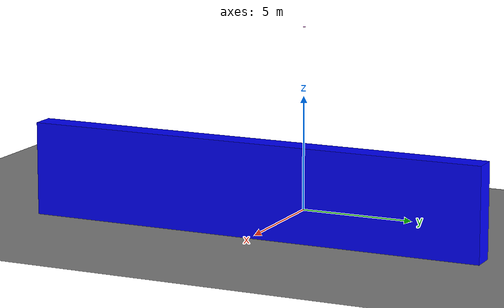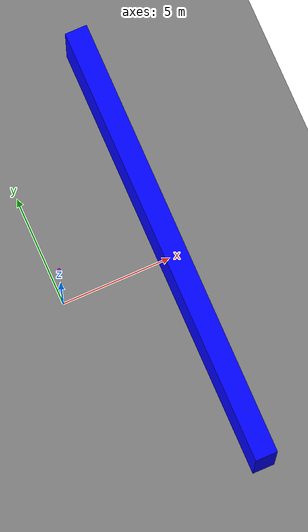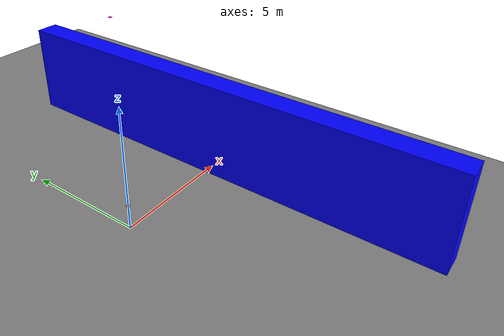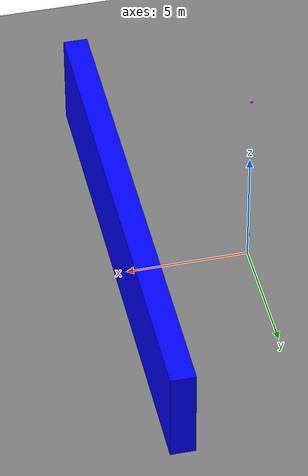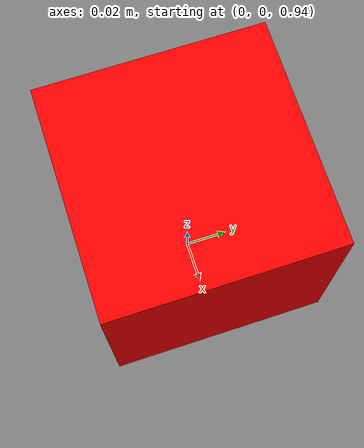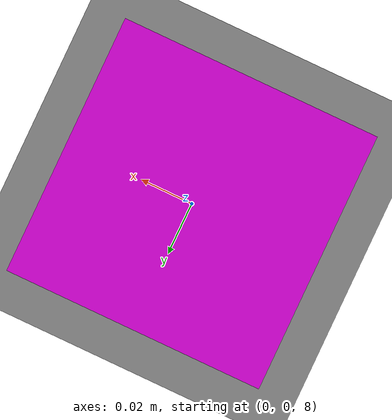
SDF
<sdf version="1.11">
 <world name="demo">
  <plugin filename="gz-sim-sensors-system" name="gz::sim::systems::Sensors">
   <render_engine>ogre2</render_engine>
  </plugin>
  <plugin filename="gz-sim-physics-system" name="gz::sim::systems::Physics"/>
  <plugin filename="gz-sim-user-commands-system" name="gz::sim::systems::UserCommands"/>
  <plugin filename="gz-sim-scene-broadcaster-system" name="gz::sim::systems::SceneBroadcaster"/>
  <scene><ambient>1.0 1.0 1.0</ambient><background>0.8 0.8 0.8</background></scene>
  <physics name="1ms" type="dart">
   <max_step_size>0.001</max_step_size>
   <real_time_factor>0</real_time_factor>
  </physics>
  <light type="directional" name="sun">
   <pose>0 0 10 0 0 0</pose>
   <diffuse>0.8 0.8 0.8 1</diffuse>
   <specular>0.2 0.2 0.2 1</specular>
   <attenuation>
    <range>1000</range>
    <constant>0.9</constant>
    <linear>0.01</linear>
    <quadratic>0.001</quadratic>
   </attenuation>
   <direction>-0.5 0.1 -0.9</direction>
  </light>
  <model name="camera">
   <pose>0 0 8 0 0 0</pose>
   <static>true</static>
   <link name="link">
    <collision name="collision">
     <geometry><plane><normal>0 0 1</normal><size>0.1 0.1</size></plane></geometry>
    </collision>
    <visual name="visual">
     <geometry><plane><normal>0 0 1</normal><size>0.1 0.1</size></plane></geometry>
     <material>
      <ambient>0.8 0.0 0.8 1</ambient>
      <diffuse>0.8 0.0 0.8 1</diffuse>
      <specular>0.8 0.0 0.8 1</specular>
     </material>
    </visual>
   </link>
  </model>
  <model name="lidar1">
   <pose>0 0 1.0 0 0 0</pose>
   <static>true</static>
   <link name="link">
    <visual name="visual">
     <geometry><box><size>0.1 0.1 0.1</size></box></geometry>
     <material><ambient>1 0 0 1</ambient></material>
    </visual>
    <sensor name="lidar" type="gpu_lidar">
     <always_on>1</always_on>
     <update_rate>30</update_rate>
     <lidar>
      <scan>
       <vertical>
        <samples>16</samples>
        <min_angle>-0.2617</min_angle>
        <max_angle>0.2617</max_angle>
        <resolution>1</resolution>
       </vertical>
       <horizontal>
        <min_angle>-3.1415</min_angle>
        <max_angle>3.1415</max_angle>
        <samples>6400</samples>
        <resolution>1</resolution>
       </horizontal>
      </scan>
      <range><min>0.1</min><max>100.0</max></range>
      <noise><type>gaussian</type><mean>0.0</mean><stddev>0.01</stddev></noise>
     </lidar>
    </sensor>
   </link>
  </model>
  <model name="lidar2">
   <pose>0 0 1.0 0 0 0</pose>
   <static>true</static>
   <link name="link">
    <visual name="visual">
     <geometry><box><size>0.1 0.1 0.1</size></box></geometry>
     <material><ambient>1 0 0 1</ambient></material>
    </visual>
    <sensor name="lidar" type="gpu_lidar">
     <always_on>1</always_on>
     <update_rate>30</update_rate>
     <lidar>
      <scan>
       <vertical>
        <samples>16</samples>
        <min_angle>-0.2617</min_angle>
        <max_angle>0.2617</max_angle>
        <resolution>1</resolution>
       </vertical>
       <horizontal>
        <min_angle>-3.1415</min_angle>
        <max_angle>3.1415</max_angle>
        <samples>6400</samples>
        <resolution>1</resolution>
       </horizontal>
      </scan>
      <range><min>0.1</min><max>100.0</max></range>
      <noise><type>gaussian</type><mean>0.0</mean><stddev>0.01</stddev></noise>
     </lidar>
    </sensor>
   </link>
  </model>
  <model name="ground_plane">
   <static>true</static>
   <link name="link">
    <collision name="collision">
     <geometry><plane><normal>0 0 1</normal><size>20 20</size></plane></geometry>
    </collision>
    <visual name="visual">
     <geometry><plane><normal>0 0 1</normal><size>20 20</size></plane></geometry>
     <material>
      <ambient>0.5 0.5 0.5 1</ambient>
      <diffuse>0.5 0.5 0.5 1</diffuse>
      <specular>0.5 0.5 0.5 1</specular>
     </material>
    </visual>
   </link>
  </model>
  <model name="box_blue">
   <pose>5 0 2 0 0 0</pose>
   <link name="box_link">
    <inertial>
     <inertia><ixx>0.16666</ixx><ixy>0</ixy><ixz>0</ixz><iyy>0.16666</iyy><iyz>0</iyz><izz>0.16666</izz></inertia>
     <mass>1.0</mass>
    </inertial>
    <collision name="box_collision"><geometry><box><size>1 20 4</size></box></geometry></collision>
    <visual name="box_visual">
     <geometry><box><size>1 20 4</size></box></geometry>
     <material><ambient>0 0 1 1</ambient><diffuse>0 0 1 1</diffuse><specular>0 0 1 1</specular></material>
    </visual>
   </link>
  </model>
 </world>
</sdf>
